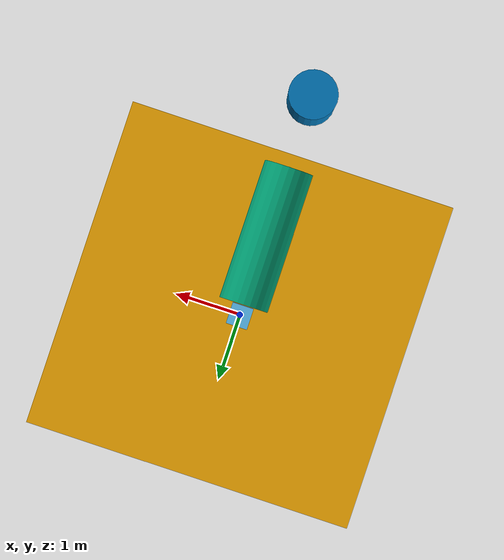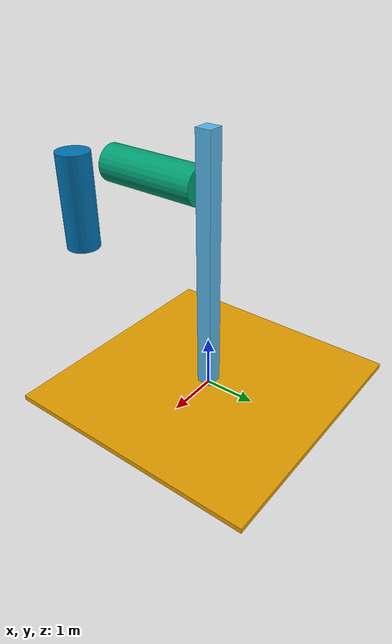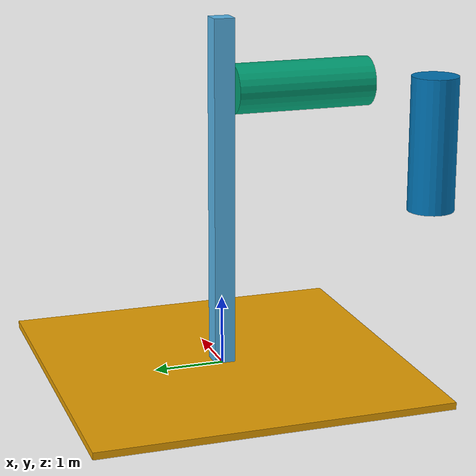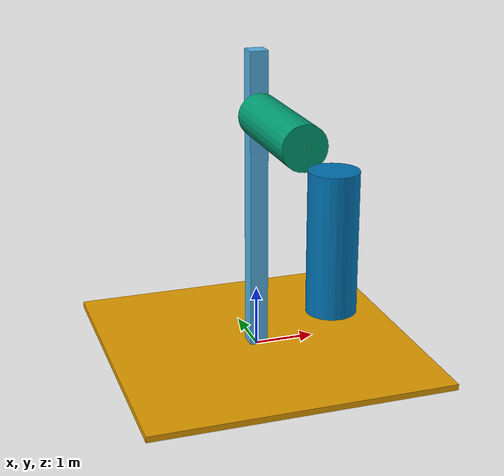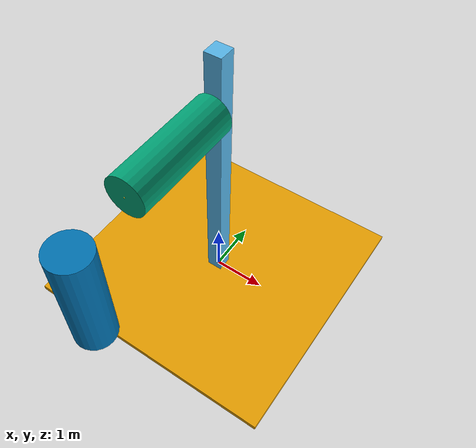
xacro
<?xml version="1.0"?>
<robot xmlns:xacro="http://www.ros.org/wiki/xacro" name="env">
    <xacro:include filename="$(find robot_manipulator)/urdf/model/functions.xacro"/>

    <!-- ground -->
    <xacro:m_link_box name="ground" origin_xyz="0 0 0" origin_rpy="0 0 0" size="5 5 0.1"
        mass="57.906"
        ixx="12.679" ixy="0" ixz="0"
        iyy="12.679" iyz="0"
        izz="0.651" />

    <!-- fixed joint -->
    <xacro:m_joint_fixed name="ground_stand" parent="ground" child="stand"
        origin_rpy="0 0 0" origin_xyz="0 0 0" />

    <!-- stand -->
    <xacro:m_link_box name="stand" origin_xyz="0 0 2.5" origin_rpy="0 0 0" size="0.3 0.3 5"
        mass="57.906"
        ixx="12.679" ixy="0" ixz="0"
        iyy="12.679" iyz="0"
        izz="0.651" />

    <!-- fixed joint -->
    <xacro:m_joint_fixed name="stand_base" parent="stand" child="base"
        origin_rpy="0 0 0" origin_xyz="0 0 4" />

    <!-- shoulder -->
    <xacro:m_link_cylinder name="base" origin_rpy="1.57 0 0" origin_xyz="0 -1.16 0"
        radius="0.35" length="2"
        mass="57.906"
        ixx="12.679" ixy="0" ixz="0"
        iyy="12.679" iyz="0"
        izz="0.651" />

    <!-- revolute joint -->
    <xacro:m_joint_revolute name="base_dummy" parent="base" child="dummy"
        origin_rpy="0 0 0" origin_xyz="0 -2.16 0" axis_xyz="0 1 0"
        limit_e="1000" limit_l="-3.14" limit_u="3.14" limit_v="0.5" />
    <xacro:m_transmission joint="base_dummy" />

    <!-- dummy link -->
    <xacro:m_link_cylinder name="dummy" origin_rpy="0 0 0" origin_xyz="0 0 0"
        radius="0.01" length="0.01"
        mass="0.01"
        ixx="12.679" ixy="0" ixz="0"
        iyy="12.679" iyz="0"
        izz="0.651" />

    <!-- revolute joint -->
    <xacro:m_joint_revolute name="dummy_link" parent="dummy" child="link"
        origin_rpy="0 0 0" origin_xyz="0 -0.71 0" axis_xyz="1 0 0"
        limit_e="1000" limit_l="-3.14" limit_u="3.14" limit_v="0.5" />
    <xacro:m_transmission joint="dummy_link" />

    <!-- arm -->
    <xacro:m_link_cylinder name="link" origin_rpy="0 0 0" origin_xyz="0 -0.36 -1"
        radius="0.35" length="2"
        mass="57.906"
        ixx="12.679" ixy="0" ixz="0"
        iyy="12.679" iyz="0"
        izz="0.651" />

    <!-- Add gazebo plugin at end of the file as we are adding gazebo controllers -->
    <gazebo>
        <plugin name="gazebo_ros_control" filename="libgazebo_ros_control.so" />
    </gazebo>

<!-- cd construct_ws/src/robot_manipulator/urdf/model & check_urdf <(xacro env.xacro) -->
</robot>

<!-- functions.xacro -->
<robot xmlns:xacro="http://www.ros.org/wiki/xacro">
    <xacro:macro name="m_joint_revolute" params="name axis_xyz origin_rpy origin_xyz parent child limit_e limit_l limit_u limit_v">
        <joint name="${name}" type="revolute">
            <origin rpy="${origin_rpy}" xyz="${origin_xyz}"/>
            <parent link="${parent}"/>
            <child link="${child}"/>
            <axis xyz="${axis_xyz}"/>
            <limit lower="${limit_l}" upper="${limit_u}" effort="${limit_e}" velocity="${limit_v}"/>
        </joint>
    </xacro:macro>

    <xacro:macro name="m_joint_fixed" params="name origin_rpy origin_xyz parent child">
        <joint name="${name}" type="fixed">
            <origin rpy="${origin_rpy}" xyz="${origin_xyz}"/>
            <parent link="${parent}"/>
            <child link="${child}"/>
        </joint>
    </xacro:macro>

    <xacro:macro name="m_link_cylinder" params="name origin_xyz origin_rpy radius length mass ixx ixy ixz iyy iyz izz">
        <link name="${name}">
            <visual>
                <origin rpy="${origin_rpy}" xyz="${origin_xyz}"/>
                <geometry>
                    <cylinder radius="${radius}" length="${length}"/>
                </geometry>
            </visual>
            <inertial>
                <origin xyz="${origin_xyz}" rpy="${origin_rpy}"/>
                <mass value="${mass}"/>
                <inertia ixx="${ixx}" ixy="${ixy}" ixz="${ixz}" iyy="${iyy}" iyz="${iyz}" izz="${izz}"/>
            </inertial>
            <collision>
                <origin rpy="${origin_rpy}" xyz="${origin_xyz}"/>
                <geometry>
                    <cylinder radius="${radius}" length="${length}"/>
                </geometry>
            </collision>
        </link>
    </xacro:macro>

    <xacro:macro name="m_link_box" params="name origin_xyz origin_rpy size mass ixx ixy ixz iyy iyz izz">
        <link name="${name}">
            <visual>
                <origin rpy="${origin_rpy}" xyz="${origin_xyz}"/>
                <geometry>
                    <box size="${size}"/>
                </geometry>
            </visual>
            <inertial>
                <origin xyz="${origin_xyz}" rpy="${origin_rpy}"/>
                <mass value="${mass}"/>
                <inertia ixx="${ixx}" ixy="${ixy}" ixz="${ixz}" iyy="${iyy}" iyz="${iyz}" izz="${izz}"/>
            </inertial>
            <collision>
                <origin rpy="${origin_rpy}" xyz="${origin_xyz}"/>
                <geometry>
                    <box size="${size}"/>
                </geometry>
            </collision>
        </link>
    </xacro:macro>

    <xacro:macro name="m_transmission" params="joint">
        <transmission name="trans_${joint}">
            <type>transmission_interface/SimpleTransmission</type>
            <joint name="${joint}">
                <hardwareInterface>hardware_interface/PositionJointInterface</hardwareInterface>
            </joint>
            <actuator name="motor_${joint}">
                <hardwareInterface>hardware_interface/PositionJointInterface</hardwareInterface>
                <mechanicalReduction>1</mechanicalReduction>
            </actuator>
        </transmission>
    </xacro:macro>

</robot>
